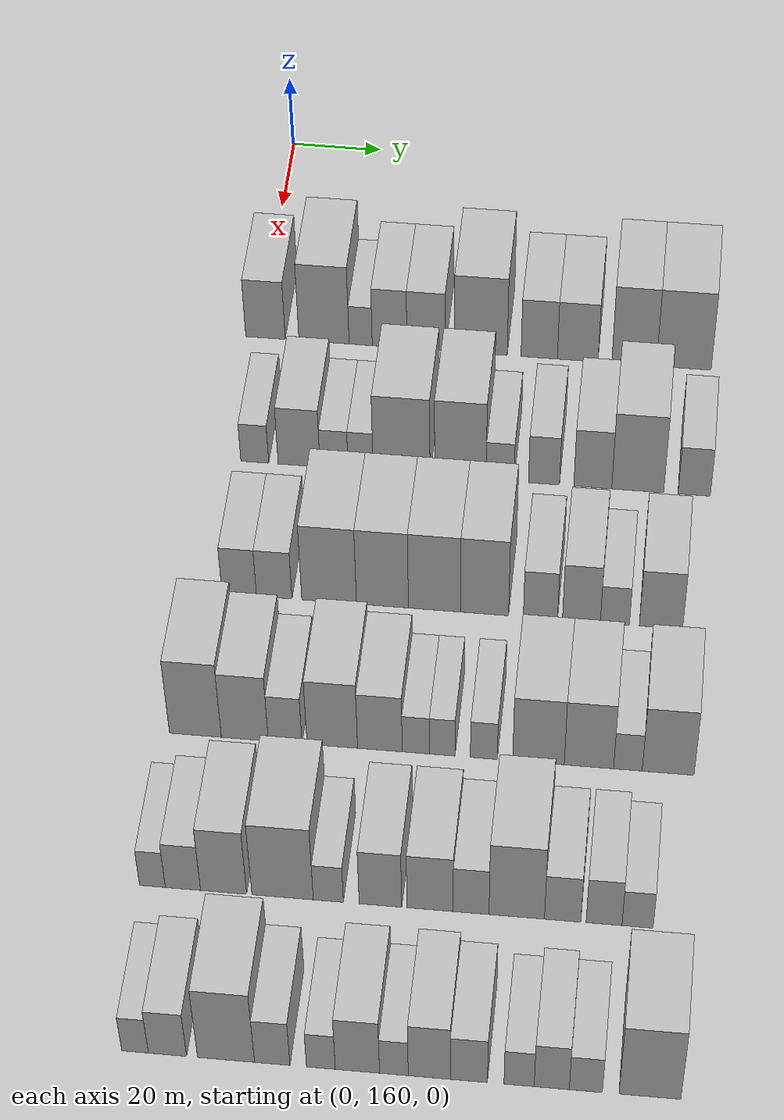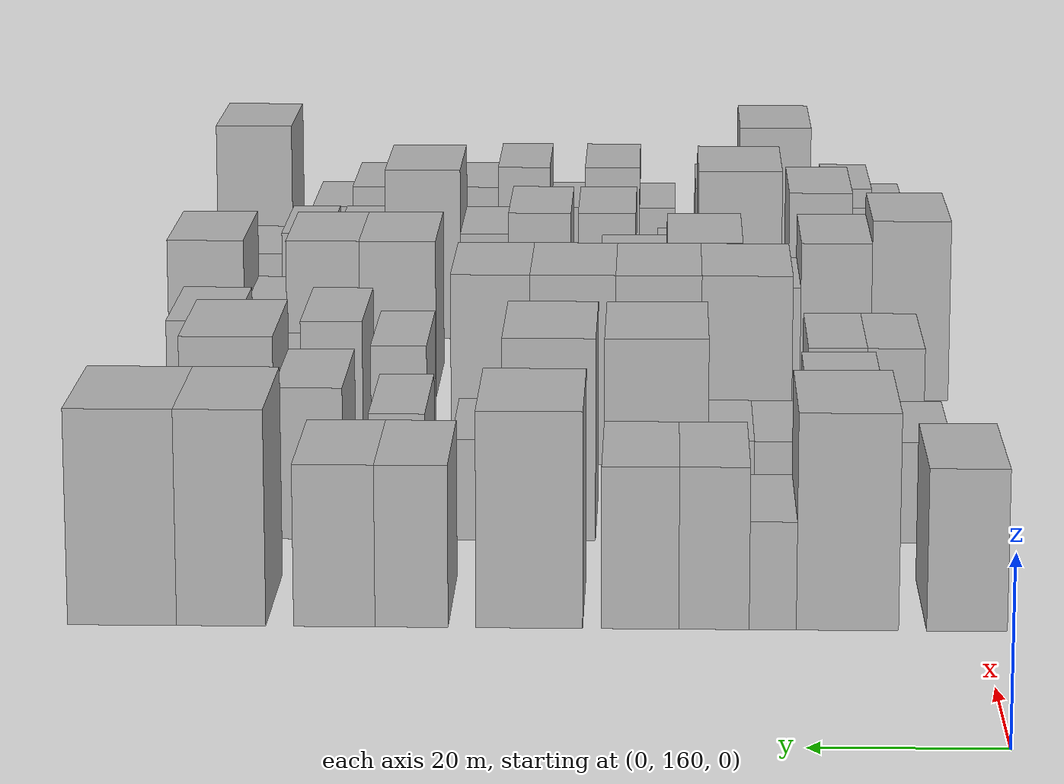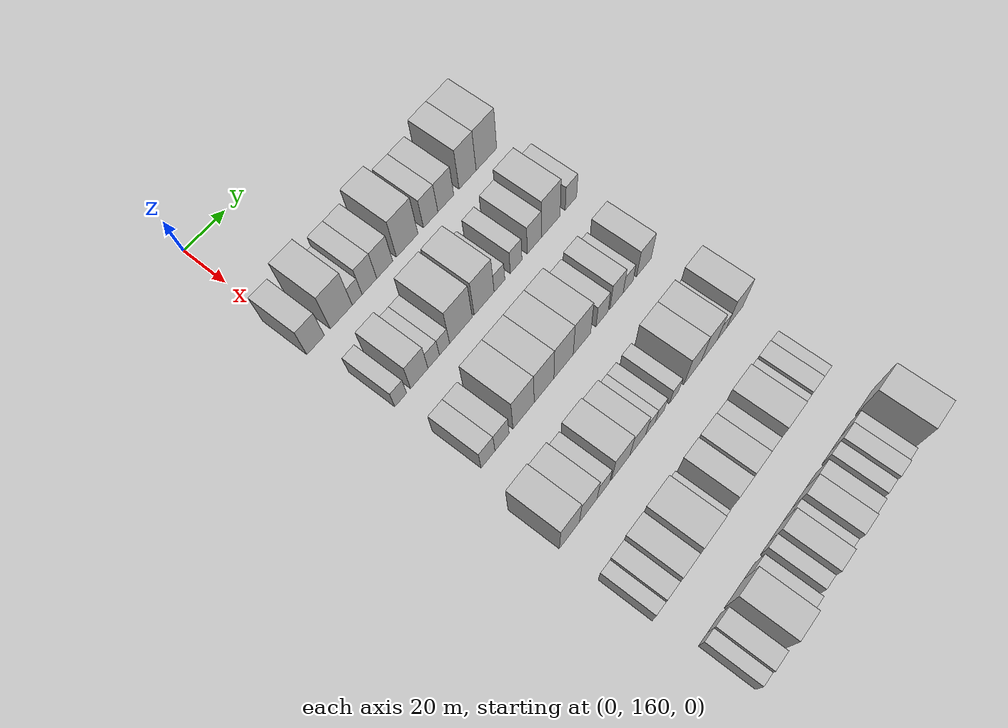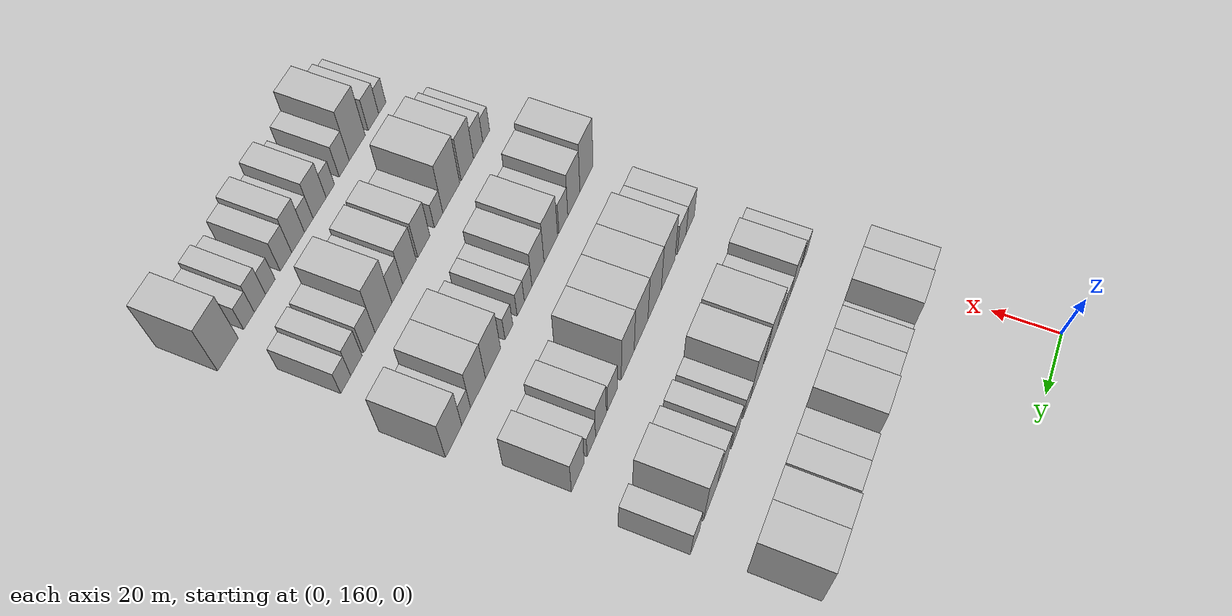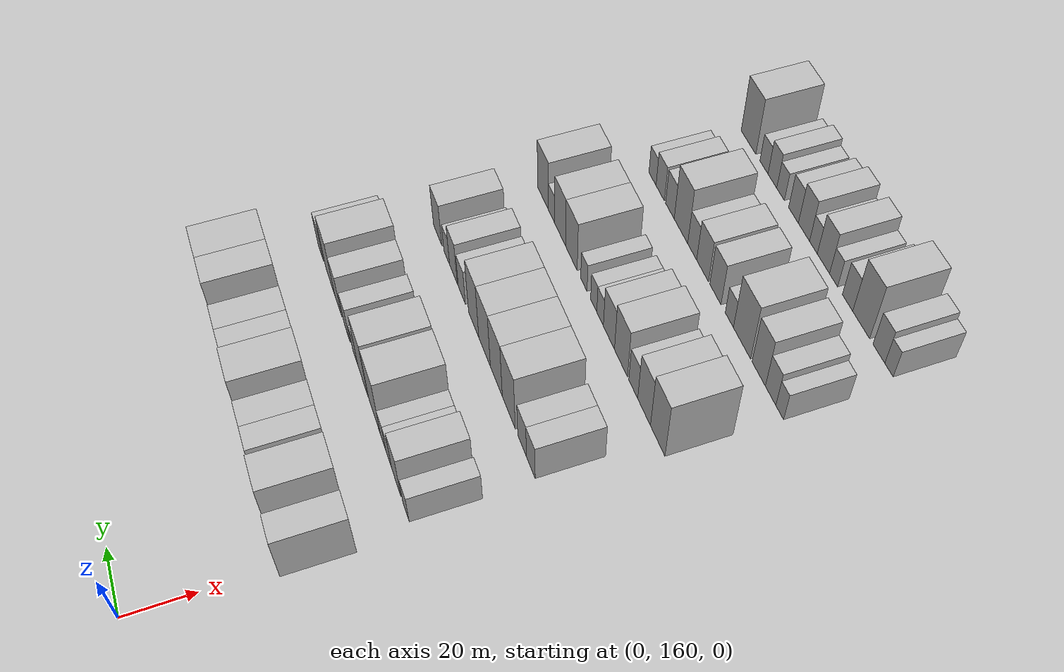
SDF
<sdf version="1.6">
 <world name="default">
  <model name="building_88">
   <static>1</static>
   <pose>50.0000 161.5408 0 0.000000 0.000000 0.000000</pose>
   <link name="link">
    <pose>0 0 9.00 0 0 0</pose>
    <collision name="collision"><geometry><box><size>20.0000 8.6439 18.0000</size></box></geometry></collision>
    <visual name="visual">
     <cast_shadows>0</cast_shadows>
     <geometry><box><size>20.0000 8.6439 18.0000</size></box></geometry>
     <material>
      <script>
       <uri>model://HANNAS_wall/materials/scripts</uri>
       <uri>model://HANNAS_wall/materials/textures</uri>
       <name>vrc/HANNAS_wall</name>
      </script>
     </material>
    </visual>
   </link>
  </model>
  <model name="building_89">
   <static>1</static>
   <pose>50.0000 174.3476 0 0.000000 0.000000 0.000000</pose>
   <link name="link">
    <pose>0 0 12.00 0 0 0</pose>
    <collision name="collision"><geometry><box><size>20.0000 10.9697 24.0000</size></box></geometry></collision>
    <visual name="visual">
     <cast_shadows>0</cast_shadows>
     <geometry><box><size>20.0000 10.9697 24.0000</size></box></geometry>
     <material>
      <script>
       <uri>model://HANNAS_wall/materials/scripts</uri>
       <uri>model://HANNAS_wall/materials/textures</uri>
       <name>vrc/HANNAS_wall</name>
      </script>
     </material>
    </visual>
   </link>
  </model>
  <model name="building_90">
   <static>1</static>
   <pose>50.0000 182.3591 0 0.000000 0.000000 0.000000</pose>
   <link name="link">
    <pose>0 0 6.00 0 0 0</pose>
    <collision name="collision"><geometry><box><size>20.0000 5.0533 12.0000</size></box></geometry></collision>
    <visual name="visual">
     <cast_shadows>0</cast_shadows>
     <geometry><box><size>20.0000 5.0533 12.0000</size></box></geometry>
     <material>
      <script>
       <uri>model://HANNAS_wall/materials/scripts</uri>
       <uri>model://HANNAS_wall/materials/textures</uri>
       <name>vrc/HANNAS_wall</name>
      </script>
     </material>
    </visual>
   </link>
  </model>
  <model name="building_91">
   <static>1</static>
   <pose>50.0000 188.6695 0 0.000000 0.000000 0.000000</pose>
   <link name="link">
    <pose>0 0 9.00 0 0 0</pose>
    <collision name="collision"><geometry><box><size>20.0000 7.5675 18.0000</size></box></geometry></collision>
    <visual name="visual">
     <cast_shadows>0</cast_shadows>
     <geometry><box><size>20.0000 7.5675 18.0000</size></box></geometry>
     <material>
      <script>
       <uri>model://HANNAS_wall/materials/scripts</uri>
       <uri>model://HANNAS_wall/materials/textures</uri>
       <name>vrc/HANNAS_wall</name>
      </script>
     </material>
    </visual>
   </link>
  </model>
  <model name="building_92">
   <static>1</static>
   <pose>50.0000 196.6122 0 0.000000 0.000000 0.000000</pose>
   <link name="link">
    <pose>0 0 9.00 0 0 0</pose>
    <collision name="collision"><geometry><box><size>20.0000 8.3180 18.0000</size></box></geometry></collision>
    <visual name="visual">
     <cast_shadows>0</cast_shadows>
     <geometry><box><size>20.0000 8.3180 18.0000</size></box></geometry>
     <material>
      <script>
       <uri>model://HANNAS_wall/materials/scripts</uri>
       <uri>model://HANNAS_wall/materials/textures</uri>
       <name>vrc/HANNAS_wall</name>
      </script>
     </material>
    </visual>
   </link>
  </model>
  <model name="building_93">
   <static>1</static>
   <pose>50.0000 208.5080 0 0.000000 0.000000 0.000000</pose>
   <link name="link">
    <pose>0 0 12.00 0 0 0</pose>
    <collision name="collision"><geometry><box><size>20.0000 11.4736 24.0000</size></box></geometry></collision>
    <visual name="visual">
     <cast_shadows>0</cast_shadows>
     <geometry><box><size>20.0000 11.4736 24.0000</size></box></geometry>
     <material>
      <script>
       <uri>model://HANNAS_wall/materials/scripts</uri>
       <uri>model://HANNAS_wall/materials/textures</uri>
       <name>vrc/HANNAS_wall</name>
      </script>
     </material>
    </visual>
   </link>
  </model>
  <model name="building_94">
   <static>1</static>
   <pose>50.0000 221.1806 0 0.000000 0.000000 0.000000</pose>
   <link name="link">
    <pose>0 0 9.00 0 0 0</pose>
    <collision name="collision"><geometry><box><size>20.0000 7.8715 18.0000</size></box></geometry></collision>
    <visual name="visual">
     <cast_shadows>0</cast_shadows>
     <geometry><box><size>20.0000 7.8715 18.0000</size></box></geometry>
     <material>
      <script>
       <uri>model://HANNAS_wall/materials/scripts</uri>
       <uri>model://HANNAS_wall/materials/textures</uri>
       <name>vrc/HANNAS_wall</name>
      </script>
     </material>
    </visual>
   </link>
  </model>
  <model name="building_95">
   <static>1</static>
   <pose>50.0000 229.5053 0 0.000000 0.000000 0.000000</pose>
   <link name="link">
    <pose>0 0 9.00 0 0 0</pose>
    <collision name="collision"><geometry><box><size>20.0000 8.7780 18.0000</size></box></geometry></collision>
    <visual name="visual">
     <cast_shadows>0</cast_shadows>
     <geometry><box><size>20.0000 8.7780 18.0000</size></box></geometry>
     <material>
      <script>
       <uri>model://HANNAS_wall/materials/scripts</uri>
       <uri>model://HANNAS_wall/materials/textures</uri>
       <name>vrc/HANNAS_wall</name>
      </script>
     </material>
    </visual>
   </link>
  </model>
  <model name="building_96">
   <static>1</static>
   <pose>50.0000 241.7116 0 0.000000 0.000000 0.000000</pose>
   <link name="link">
    <pose>0 0 12.00 0 0 0</pose>
    <collision name="collision"><geometry><box><size>20.0000 9.6346 24.0000</size></box></geometry></collision>
    <visual name="visual">
     <cast_shadows>0</cast_shadows>
     <geometry><box><size>20.0000 9.6346 24.0000</size></box></geometry>
     <material>
      <script>
       <uri>model://HANNAS_wall/materials/scripts</uri>
       <uri>model://HANNAS_wall/materials/textures</uri>
       <name>vrc/HANNAS_wall</name>
      </script>
     </material>
    </visual>
   </link>
  </model>
  <model name="building_97">
   <static>1</static>
   <pose>50.0000 252.4212 0 0.000000 0.000000 0.000000</pose>
   <link name="link">
    <pose>0 0 12.00 0 0 0</pose>
    <collision name="collision"><geometry><box><size>20.0000 11.7846 24.0000</size></box></geometry></collision>
    <visual name="visual">
     <cast_shadows>0</cast_shadows>
     <geometry><box><size>20.0000 11.7846 24.0000</size></box></geometry>
     <material>
      <script>
       <uri>model://HANNAS_wall/materials/scripts</uri>
       <uri>model://HANNAS_wall/materials/textures</uri>
       <name>vrc/HANNAS_wall</name>
      </script>
     </material>
    </visual>
   </link>
  </model>
  <model name="building_217">
   <static>1</static>
   <pose>85.0000 163.9812 0 0.000000 0.000000 0.000000</pose>
   <link name="link">
    <pose>0 0 6.00 0 0 0</pose>
    <collision name="collision"><geometry><box><size>20.0000 5.8982 12.0000</size></box></geometry></collision>
    <visual name="visual">
     <cast_shadows>0</cast_shadows>
     <geometry><box><size>20.0000 5.8982 12.0000</size></box></geometry>
     <material>
      <script>
       <uri>model://HANNAS_wall/materials/scripts</uri>
       <uri>model://HANNAS_wall/materials/textures</uri>
       <name>vrc/HANNAS_wall</name>
      </script>
     </material>
    </visual>
   </link>
  </model>
  <model name="building_218">
   <static>1</static>
   <pose>85.0000 173.3570 0 0.000000 0.000000 0.000000</pose>
   <link name="link">
    <pose>0 0 9.00 0 0 0</pose>
    <collision name="collision"><geometry><box><size>20.0000 8.8533 18.0000</size></box></geometry></collision>
    <visual name="visual">
     <cast_shadows>0</cast_shadows>
     <geometry><box><size>20.0000 8.8533 18.0000</size></box></geometry>
     <material>
      <script>
       <uri>model://HANNAS_wall/materials/scripts</uri>
       <uri>model://HANNAS_wall/materials/textures</uri>
       <name>vrc/HANNAS_wall</name>
      </script>
     </material>
    </visual>
   </link>
  </model>
  <model name="building_219">
   <static>1</static>
   <pose>85.0000 180.7452 0 0.000000 0.000000 0.000000</pose>
   <link name="link">
    <pose>0 0 6.00 0 0 0</pose>
    <collision name="collision"><geometry><box><size>20.0000 5.9231 12.0000</size></box></geometry></collision>
    <visual name="visual">
     <cast_shadows>0</cast_shadows>
     <geometry><box><size>20.0000 5.9231 12.0000</size></box></geometry>
     <material>
      <script>
       <uri>model://HANNAS_wall/materials/scripts</uri>
       <uri>model://HANNAS_wall/materials/textures</uri>
       <name>vrc/HANNAS_wall</name>
      </script>
     </material>
    </visual>
   </link>
  </model>
  <model name="building_220">
   <static>1</static>
   <pose>85.0000 186.3624 0 0.000000 0.000000 0.000000</pose>
   <link name="link">
    <pose>0 0 6.00 0 0 0</pose>
    <collision name="collision"><geometry><box><size>20.0000 5.3111 12.0000</size></box></geometry></collision>
    <visual name="visual">
     <cast_shadows>0</cast_shadows>
     <geometry><box><size>20.0000 5.3111 12.0000</size></box></geometry>
     <material>
      <script>
       <uri>model://HANNAS_wall/materials/scripts</uri>
       <uri>model://HANNAS_wall/materials/textures</uri>
       <name>vrc/HANNAS_wall</name>
      </script>
     </material>
    </visual>
   </link>
  </model>
  <model name="building_221">
   <static>1</static>
   <pose>85.0000 194.9971 0 0.000000 0.000000 0.000000</pose>
   <link name="link">
    <pose>0 0 12.00 0 0 0</pose>
    <collision name="collision"><geometry><box><size>20.0000 11.9584 24.0000</size></box></geometry></collision>
    <visual name="visual">
     <cast_shadows>0</cast_shadows>
     <geometry><box><size>20.0000 11.9584 24.0000</size></box></geometry>
     <material>
      <script>
       <uri>model://HANNAS_wall/materials/scripts</uri>
       <uri>model://HANNAS_wall/materials/textures</uri>
       <name>vrc/HANNAS_wall</name>
      </script>
     </material>
    </visual>
   </link>
  </model>
  <model name="building_222">
   <static>1</static>
   <pose>85.0000 207.3681 0 0.000000 0.000000 0.000000</pose>
   <link name="link">
    <pose>0 0 12.00 0 0 0</pose>
    <collision name="collision"><geometry><box><size>20.0000 10.7835 24.0000</size></box></geometry></collision>
    <visual name="visual">
     <cast_shadows>0</cast_shadows>
     <geometry><box><size>20.0000 10.7835 24.0000</size></box></geometry>
     <material>
      <script>
       <uri>model://HANNAS_wall/materials/scripts</uri>
       <uri>model://HANNAS_wall/materials/textures</uri>
       <name>vrc/HANNAS_wall</name>
      </script>
     </material>
    </visual>
   </link>
  </model>
  <model name="building_223">
   <static>1</static>
   <pose>85.0000 215.7024 0 0.000000 0.000000 0.000000</pose>
   <link name="link">
    <pose>0 0 6.00 0 0 0</pose>
    <collision name="collision"><geometry><box><size>20.0000 5.8851 12.0000</size></box></geometry></collision>
    <visual name="visual">
     <cast_shadows>0</cast_shadows>
     <geometry><box><size>20.0000 5.8851 12.0000</size></box></geometry>
     <material>
      <script>
       <uri>model://HANNAS_wall/materials/scripts</uri>
       <uri>model://HANNAS_wall/materials/textures</uri>
       <name>vrc/HANNAS_wall</name>
      </script>
     </material>
    </visual>
   </link>
  </model>
  <model name="building_224">
   <static>1</static>
   <pose>85.0000 224.8916 0 0.000000 0.000000 0.000000</pose>
   <link name="link">
    <pose>0 0 7.50 0 0 0</pose>
    <collision name="collision"><geometry><box><size>20.0000 6.4934 15.0000</size></box></geometry></collision>
    <visual name="visual">
     <cast_shadows>0</cast_shadows>
     <geometry><box><size>20.0000 6.4934 15.0000</size></box></geometry>
     <material>
      <script>
       <uri>model://HANNAS_wall/materials/scripts</uri>
       <uri>model://HANNAS_wall/materials/textures</uri>
       <name>vrc/HANNAS_wall</name>
      </script>
     </material>
    </visual>
   </link>
  </model>
  <model name="building_225">
   <static>1</static>
   <pose>85.0000 235.0985 0 0.000000 0.000000 0.000000</pose>
   <link name="link">
    <pose>0 0 9.00 0 0 0</pose>
    <collision name="collision"><geometry><box><size>20.0000 7.9205 18.0000</size></box></geometry></collision>
    <visual name="visual">
     <cast_shadows>0</cast_shadows>
     <geometry><box><size>20.0000 7.9205 18.0000</size></box></geometry>
     <material>
      <script>
       <uri>model://HANNAS_wall/materials/scripts</uri>
       <uri>model://HANNAS_wall/materials/textures</uri>
       <name>vrc/HANNAS_wall</name>
      </script>
     </material>
    </visual>
   </link>
  </model>
  <model name="building_226">
   <static>1</static>
   <pose>85.0000 244.4777 0 0.000000 0.000000 0.000000</pose>
   <link name="link">
    <pose>0 0 12.00 0 0 0</pose>
    <collision name="collision"><geometry><box><size>20.0000 10.8379 24.0000</size></box></geometry></collision>
    <visual name="visual">
     <cast_shadows>0</cast_shadows>
     <geometry><box><size>20.0000 10.8379 24.0000</size></box></geometry>
     <material>
      <script>
       <uri>model://HANNAS_wall/materials/scripts</uri>
       <uri>model://HANNAS_wall/materials/textures</uri>
       <name>vrc/HANNAS_wall</name>
      </script>
     </material>
    </visual>
   </link>
  </model>
  <model name="building_227">
   <static>1</static>
   <pose>85.0000 256.2527 0 0.000000 0.000000 0.000000</pose>
   <link name="link">
    <pose>0 0 7.50 0 0 0</pose>
    <collision name="collision"><geometry><box><size>20.0000 6.7119 15.0000</size></box></geometry></collision>
    <visual name="visual">
     <cast_shadows>0</cast_shadows>
     <geometry><box><size>20.0000 6.7119 15.0000</size></box></geometry>
     <material>
      <script>
       <uri>model://HANNAS_wall/materials/scripts</uri>
       <uri>model://HANNAS_wall/materials/textures</uri>
       <name>vrc/HANNAS_wall</name>
      </script>
     </material>
    </visual>
   </link>
  </model>
  <model name="building_328">
   <static>1</static>
   <pose>120.0000 165.5937 0 0.000000 0.000000 0.000000</pose>
   <link name="link">
    <pose>0 0 7.50 0 0 0</pose>
    <collision name="collision"><geometry><box><size>20.0000 7.0511 15.0000</size></box></geometry></collision>
    <visual name="visual">
     <cast_shadows>0</cast_shadows>
     <geometry><box><size>20.0000 7.0511 15.0000</size></box></geometry>
     <material>
      <script>
       <uri>model://HANNAS_wall/materials/scripts</uri>
       <uri>model://HANNAS_wall/materials/textures</uri>
       <name>vrc/HANNAS_wall</name>
      </script>
     </material>
    </visual>
   </link>
  </model>
  <model name="building_329">
   <static>1</static>
   <pose>120.0000 172.7492 0 0.000000 0.000000 0.000000</pose>
   <link name="link">
    <pose>0 0 7.50 0 0 0</pose>
    <collision name="collision"><geometry><box><size>20.0000 7.2598 15.0000</size></box></geometry></collision>
    <visual name="visual">
     <cast_shadows>0</cast_shadows>
     <geometry><box><size>20.0000 7.2598 15.0000</size></box></geometry>
     <material>
      <script>
       <uri>model://HANNAS_wall/materials/scripts</uri>
       <uri>model://HANNAS_wall/materials/textures</uri>
       <name>vrc/HANNAS_wall</name>
      </script>
     </material>
    </visual>
   </link>
  </model>
  <model name="building_330">
   <static>1</static>
   <pose>120.0000 183.9544 0 0.000000 0.000000 0.000000</pose>
   <link name="link">
    <pose>0 0 12.00 0 0 0</pose>
    <collision name="collision"><geometry><box><size>20.0000 11.1507 24.0000</size></box></geometry></collision>
    <visual name="visual">
     <cast_shadows>0</cast_shadows>
     <geometry><box><size>20.0000 11.1507 24.0000</size></box></geometry>
     <material>
      <script>
       <uri>model://HANNAS_wall/materials/scripts</uri>
       <uri>model://HANNAS_wall/materials/textures</uri>
       <name>vrc/HANNAS_wall</name>
      </script>
     </material>
    </visual>
   </link>
  </model>
  <model name="building_331">
   <static>1</static>
   <pose>120.0000 194.8157 0 0.000000 0.000000 0.000000</pose>
   <link name="link">
    <pose>0 0 12.00 0 0 0</pose>
    <collision name="collision"><geometry><box><size>20.0000 10.5718 24.0000</size></box></geometry></collision>
    <visual name="visual">
     <cast_shadows>0</cast_shadows>
     <geometry><box><size>20.0000 10.5718 24.0000</size></box></geometry>
     <material>
      <script>
       <uri>model://HANNAS_wall/materials/scripts</uri>
       <uri>model://HANNAS_wall/materials/textures</uri>
       <name>vrc/HANNAS_wall</name>
      </script>
     </material>
    </visual>
   </link>
  </model>
  <model name="building_332">
   <static>1</static>
   <pose>120.0000 205.3823 0 0.000000 0.000000 0.000000</pose>
   <link name="link">
    <pose>0 0 12.00 0 0 0</pose>
    <collision name="collision"><geometry><box><size>20.0000 10.5615 24.0000</size></box></geometry></collision>
    <visual name="visual">
     <cast_shadows>0</cast_shadows>
     <geometry><box><size>20.0000 10.5615 24.0000</size></box></geometry>
     <material>
      <script>
       <uri>model://HANNAS_wall/materials/scripts</uri>
       <uri>model://HANNAS_wall/materials/textures</uri>
       <name>vrc/HANNAS_wall</name>
      </script>
     </material>
    </visual>
   </link>
  </model>
  <model name="building_333">
   <static>1</static>
   <pose>120.0000 215.5341 0 0.000000 0.000000 0.000000</pose>
   <link name="link">
    <pose>0 0 12.00 0 0 0</pose>
    <collision name="collision"><geometry><box><size>20.0000 9.7420 24.0000</size></box></geometry></collision>
    <visual name="visual">
     <cast_shadows>0</cast_shadows>
     <geometry><box><size>20.0000 9.7420 24.0000</size></box></geometry>
     <material>
      <script>
       <uri>model://HANNAS_wall/materials/scripts</uri>
       <uri>model://HANNAS_wall/materials/textures</uri>
       <name>vrc/HANNAS_wall</name>
      </script>
     </material>
    </visual>
   </link>
  </model>
  <model name="building_334">
   <static>1</static>
   <pose>120.0000 226.8589 0 0.000000 0.000000 0.000000</pose>
   <link name="link">
    <pose>0 0 7.50 0 0 0</pose>
    <collision name="collision"><geometry><box><size>20.0000 6.9076 15.0000</size></box></geometry></collision>
    <visual name="visual">
     <cast_shadows>0</cast_shadows>
     <geometry><box><size>20.0000 6.9076 15.0000</size></box></geometry>
     <material>
      <script>
       <uri>model://HANNAS_wall/materials/scripts</uri>
       <uri>model://HANNAS_wall/materials/textures</uri>
       <name>vrc/HANNAS_wall</name>
      </script>
     </material>
    </visual>
   </link>
  </model>
  <model name="building_335">
   <static>1</static>
   <pose>120.0000 235.1327 0 0.000000 0.000000 0.000000</pose>
   <link name="link">
    <pose>0 0 9.00 0 0 0</pose>
    <collision name="collision"><geometry><box><size>20.0000 7.6400 18.0000</size></box></geometry></collision>
    <visual name="visual">
     <cast_shadows>0</cast_shadows>
     <geometry><box><size>20.0000 7.6400 18.0000</size></box></geometry>
     <material>
      <script>
       <uri>model://HANNAS_wall/materials/scripts</uri>
       <uri>model://HANNAS_wall/materials/textures</uri>
       <name>vrc/HANNAS_wall</name>
      </script>
     </material>
    </visual>
   </link>
  </model>
  <model name="building_336">
   <static>1</static>
   <pose>120.0000 241.8894 0 0.000000 0.000000 0.000000</pose>
   <link name="link">
    <pose>0 0 6.00 0 0 0</pose>
    <collision name="collision"><geometry><box><size>20.0000 5.8735 12.0000</size></box></geometry></collision>
    <visual name="visual">
     <cast_shadows>0</cast_shadows>
     <geometry><box><size>20.0000 5.8735 12.0000</size></box></geometry>
     <material>
      <script>
       <uri>model://HANNAS_wall/materials/scripts</uri>
       <uri>model://HANNAS_wall/materials/textures</uri>
       <name>vrc/HANNAS_wall</name>
      </script>
     </material>
    </visual>
   </link>
  </model>
  <model name="building_337">
   <static>1</static>
   <pose>120.0000 251.1779 0 0.000000 0.000000 0.000000</pose>
   <link name="link">
    <pose>0 0 9.00 0 0 0</pose>
    <collision name="collision"><geometry><box><size>20.0000 8.7034 18.0000</size></box></geometry></collision>
    <visual name="visual">
     <cast_shadows>0</cast_shadows>
     <geometry><box><size>20.0000 8.7034 18.0000</size></box></geometry>
     <material>
      <script>
       <uri>model://HANNAS_wall/materials/scripts</uri>
       <uri>model://HANNAS_wall/materials/textures</uri>
       <name>vrc/HANNAS_wall</name>
      </script>
     </material>
    </visual>
   </link>
  </model>
  <model name="building_451">
   <static>1</static>
   <pose>155.0000 161.8348 0 0.000000 0.000000 0.000000</pose>
   <link name="link">
    <pose>0 0 12.00 0 0 0</pose>
    <collision name="collision"><geometry><box><size>20.0000 10.2324 24.0000</size></box></geometry></collision>
    <visual name="visual">
     <cast_shadows>0</cast_shadows>
     <geometry><box><size>20.0000 10.2324 24.0000</size></box></geometry>
     <material>
      <script>
       <uri>model://HANNAS_wall/materials/scripts</uri>
       <uri>model://HANNAS_wall/materials/textures</uri>
       <name>vrc/HANNAS_wall</name>
      </script>
     </material>
    </visual>
   </link>
  </model>
  <model name="building_452">
   <static>1</static>
   <pose>155.0000 171.5874 0 0.000000 0.000000 0.000000</pose>
   <link name="link">
    <pose>0 0 10.50 0 0 0</pose>
    <collision name="collision"><geometry><box><size>20.0000 9.2727 21.0000</size></box></geometry></collision>
    <visual name="visual">
     <cast_shadows>0</cast_shadows>
     <geometry><box><size>20.0000 9.2727 21.0000</size></box></geometry>
     <material>
      <script>
       <uri>model://HANNAS_wall/materials/scripts</uri>
       <uri>model://HANNAS_wall/materials/textures</uri>
       <name>vrc/HANNAS_wall</name>
      </script>
     </material>
    </visual>
   </link>
  </model>
  <model name="building_453">
   <static>1</static>
   <pose>155.0000 179.5387 0 0.000000 0.000000 0.000000</pose>
   <link name="link">
    <pose>0 0 7.50 0 0 0</pose>
    <collision name="collision"><geometry><box><size>20.0000 6.6299 15.0000</size></box></geometry></collision>
    <visual name="visual">
     <cast_shadows>0</cast_shadows>
     <geometry><box><size>20.0000 6.6299 15.0000</size></box></geometry>
     <material>
      <script>
       <uri>model://HANNAS_wall/materials/scripts</uri>
       <uri>model://HANNAS_wall/materials/textures</uri>
       <name>vrc/HANNAS_wall</name>
      </script>
     </material>
    </visual>
   </link>
  </model>
  <model name="building_454">
   <static>1</static>
   <pose>155.0000 188.8232 0 0.000000 0.000000 0.000000</pose>
   <link name="link">
    <pose>0 0 10.50 0 0 0</pose>
    <collision name="collision"><geometry><box><size>20.0000 9.9390 21.0000</size></box></geometry></collision>
    <visual name="visual">
     <cast_shadows>0</cast_shadows>
     <geometry><box><size>20.0000 9.9390 21.0000</size></box></geometry>
     <material>
      <script>
       <uri>model://HANNAS_wall/materials/scripts</uri>
       <uri>model://HANNAS_wall/materials/textures</uri>
       <name>vrc/HANNAS_wall</name>
      </script>
     </material>
    </visual>
   </link>
  </model>
  <model name="building_455">
   <static>1</static>
   <pose>155.0000 198.1729 0 0.000000 0.000000 0.000000</pose>
   <link name="link">
    <pose>0 0 9.00 0 0 0</pose>
    <collision name="collision"><geometry><box><size>20.0000 8.7604 18.0000</size></box></geometry></collision>
    <visual name="visual">
     <cast_shadows>0</cast_shadows>
     <geometry><box><size>20.0000 8.7604 18.0000</size></box></geometry>
     <material>
      <script>
       <uri>model://HANNAS_wall/materials/scripts</uri>
       <uri>model://HANNAS_wall/materials/textures</uri>
       <name>vrc/HANNAS_wall</name>
      </script>
     </material>
    </visual>
   </link>
  </model>
  <model name="building_456">
   <static>1</static>
   <pose>155.0000 205.2083 0 0.000000 0.000000 0.000000</pose>
   <link name="link">
    <pose>0 0 6.00 0 0 0</pose>
    <collision name="collision"><geometry><box><size>20.0000 5.3103 12.0000</size></box></geometry></collision>
    <visual name="visual">
     <cast_shadows>0</cast_shadows>
     <geometry><box><size>20.0000 5.3103 12.0000</size></box></geometry>
     <material>
      <script>
       <uri>model://HANNAS_wall/materials/scripts</uri>
       <uri>model://HANNAS_wall/materials/textures</uri>
       <name>vrc/HANNAS_wall</name>
      </script>
     </material>
    </visual>
   </link>
  </model>
  <model name="building_457">
   <static>1</static>
   <pose>155.0000 210.3767 0 0.000000 0.000000 0.000000</pose>
   <link name="link">
    <pose>0 0 6.00 0 0 0</pose>
    <collision name="collision"><geometry><box><size>20.0000 5.0266 12.0000</size></box></geometry></collision>
    <visual name="visual">
     <cast_shadows>0</cast_shadows>
     <geometry><box><size>20.0000 5.0266 12.0000</size></box></geometry>
     <material>
      <script>
       <uri>model://HANNAS_wall/materials/scripts</uri>
       <uri>model://HANNAS_wall/materials/textures</uri>
       <name>vrc/HANNAS_wall</name>
      </script>
     </material>
    </visual>
   </link>
  </model>
  <model name="building_458">
   <static>1</static>
   <pose>155.0000 218.5241 0 0.000000 0.000000 0.000000</pose>
   <link name="link">
    <pose>0 0 6.00 0 0 0</pose>
    <collision name="collision"><geometry><box><size>20.0000 5.2682 12.0000</size></box></geometry></collision>
    <visual name="visual">
     <cast_shadows>0</cast_shadows>
     <geometry><box><size>20.0000 5.2682 12.0000</size></box></geometry>
     <material>
      <script>
       <uri>model://HANNAS_wall/materials/scripts</uri>
       <uri>model://HANNAS_wall/materials/textures</uri>
       <name>vrc/HANNAS_wall</name>
      </script>
     </material>
    </visual>
   </link>
  </model>
  <model name="building_459">
   <static>1</static>
   <pose>155.0000 229.1808 0 0.000000 0.000000 0.000000</pose>
   <link name="link">
    <pose>0 0 10.50 0 0 0</pose>
    <collision name="collision"><geometry><box><size>20.0000 10.0453 21.0000</size></box></geometry></collision>
    <visual name="visual">
     <cast_shadows>0</cast_shadows>
     <geometry><box><size>20.0000 10.0453 21.0000</size></box></geometry>
     <material>
      <script>
       <uri>model://HANNAS_wall/materials/scripts</uri>
       <uri>model://HANNAS_wall/materials/textures</uri>
       <name>vrc/HANNAS_wall</name>
      </script>
     </material>
    </visual>
   </link>
  </model>
  <model name="building_460">
   <static>1</static>
   <pose>155.0000 239.0058 0 0.000000 0.000000 0.000000</pose>
   <link name="link">
    <pose>0 0 10.50 0 0 0</pose>
    <collision name="collision"><geometry><box><size>20.0000 9.6047 21.0000</size></box></geometry></collision>
    <visual name="visual">
     <cast_shadows>0</cast_shadows>
     <geometry><box><size>20.0000 9.6047 21.0000</size></box></geometry>
     <material>
      <script>
       <uri>model://HANNAS_wall/materials/scripts</uri>
       <uri>model://HANNAS_wall/materials/textures</uri>
       <name>vrc/HANNAS_wall</name>
      </script>
     </material>
    </visual>
   </link>
  </model>
  <model name="building_461">
   <static>1</static>
   <pose>155.0000 246.5909 0 0.000000 0.000000 0.000000</pose>
   <link name="link">
    <pose>0 0 6.00 0 0 0</pose>
    <collision name="collision"><geometry><box><size>20.0000 5.5655 12.0000</size></box></geometry></collision>
    <visual name="visual">
     <cast_shadows>0</cast_shadows>
     <geometry><box><size>20.0000 5.5655 12.0000</size></box></geometry>
     <material>
      <script>
       <uri>model://HANNAS_wall/materials/scripts</uri>
       <uri>model://HANNAS_wall/materials/textures</uri>
       <name>vrc/HANNAS_wall</name>
      </script>
     </material>
    </visual>
   </link>
  </model>
  <model name="building_462">
   <static>1</static>
   <pose>155.0000 254.4003 0 0.000000 0.000000 0.000000</pose>
   <link name="link">
    <pose>0 0 10.50 0 0 0</pose>
    <collision name="collision"><geometry><box><size>20.0000 10.0533 21.0000</size></box></geometry></collision>
    <visual name="visual">
     <cast_shadows>0</cast_shadows>
     <geometry><box><size>20.0000 10.0533 21.0000</size></box></geometry>
     <material>
      <script>
       <uri>model://HANNAS_wall/materials/scripts</uri>
       <uri>model://HANNAS_wall/materials/textures</uri>
       <name>vrc/HANNAS_wall</name>
      </script>
     </material>
    </visual>
   </link>
  </model>
  <model name="building_566">
   <static>1</static>
   <pose>190.0000 158.8619 0 0.000000 0.000000 0.000000</pose>
   <link name="link">
    <pose>0 0 6.00 0 0 0</pose>
    <collision name="collision"><geometry><box><size>20.0000 4.9118 12.0000</size></box></geometry></collision>
    <visual name="visual">
     <cast_shadows>0</cast_shadows>
     <geometry><box><size>20.0000 4.9118 12.0000</size></box></geometry>
     <material>
      <script>
       <uri>model://HANNAS_wall/materials/scripts</uri>
       <uri>model://HANNAS_wall/materials/textures</uri>
       <name>vrc/HANNAS_wall</name>
      </script>
     </material>
    </visual>
   </link>
  </model>
  <model name="building_567">
   <static>1</static>
   <pose>190.0000 164.6735 0 0.000000 0.000000 0.000000</pose>
   <link name="link">
    <pose>0 0 7.50 0 0 0</pose>
    <collision name="collision"><geometry><box><size>20.0000 6.7114 15.0000</size></box></geometry></collision>
    <visual name="visual">
     <cast_shadows>0</cast_shadows>
     <geometry><box><size>20.0000 6.7114 15.0000</size></box></geometry>
     <material>
      <script>
       <uri>model://HANNAS_wall/materials/scripts</uri>
       <uri>model://HANNAS_wall/materials/textures</uri>
       <name>vrc/HANNAS_wall</name>
      </script>
     </material>
    </visual>
   </link>
  </model>
  <model name="building_568">
   <static>1</static>
   <pose>190.0000 172.4108 0 0.000000 0.000000 0.000000</pose>
   <link name="link">
    <pose>0 0 10.50 0 0 0</pose>
    <collision name="collision"><geometry><box><size>20.0000 8.7631 21.0000</size></box></geometry></collision>
    <visual name="visual">
     <cast_shadows>0</cast_shadows>
     <geometry><box><size>20.0000 8.7631 21.0000</size></box></geometry>
     <material>
      <script>
       <uri>model://HANNAS_wall/materials/scripts</uri>
       <uri>model://HANNAS_wall/materials/textures</uri>
       <name>vrc/HANNAS_wall</name>
      </script>
     </material>
    </visual>
   </link>
  </model>
  <model name="building_569">
   <static>1</static>
   <pose>190.0000 183.6151 0 0.000000 0.000000 0.000000</pose>
   <link name="link">
    <pose>0 0 12.00 0 0 0</pose>
    <collision name="collision"><geometry><box><size>20.0000 11.6455 24.0000</size></box></geometry></collision>
    <visual name="visual">
     <cast_shadows>0</cast_shadows>
     <geometry><box><size>20.0000 11.6455 24.0000</size></box></geometry>
     <material>
      <script>
       <uri>model://HANNAS_wall/materials/scripts</uri>
       <uri>model://HANNAS_wall/materials/textures</uri>
       <name>vrc/HANNAS_wall</name>
      </script>
     </material>
    </visual>
   </link>
  </model>
  <model name="building_570">
   <static>1</static>
   <pose>190.0000 192.2838 0 0.000000 0.000000 0.000000</pose>
   <link name="link">
    <pose>0 0 6.00 0 0 0</pose>
    <collision name="collision"><geometry><box><size>20.0000 5.6918 12.0000</size></box></geometry></collision>
    <visual name="visual">
     <cast_shadows>0</cast_shadows>
     <geometry><box><size>20.0000 5.6918 12.0000</size></box></geometry>
     <material>
      <script>
       <uri>model://HANNAS_wall/materials/scripts</uri>
       <uri>model://HANNAS_wall/materials/textures</uri>
       <name>vrc/HANNAS_wall</name>
      </script>
     </material>
    </visual>
   </link>
  </model>
  <model name="building_571">
   <static>1</static>
   <pose>190.0000 202.1464 0 0.000000 0.000000 0.000000</pose>
   <link name="link">
    <pose>0 0 9.00 0 0 0</pose>
    <collision name="collision"><geometry><box><size>20.0000 8.0335 18.0000</size></box></geometry></collision>
    <visual name="visual">
     <cast_shadows>0</cast_shadows>
     <geometry><box><size>20.0000 8.0335 18.0000</size></box></geometry>
     <material>
      <script>
       <uri>model://HANNAS_wall/materials/scripts</uri>
       <uri>model://HANNAS_wall/materials/textures</uri>
       <name>vrc/HANNAS_wall</name>
      </script>
     </material>
    </visual>
   </link>
  </model>
  <model name="building_572">
   <static>1</static>
   <pose>190.0000 211.5142 0 0.000000 0.000000 0.000000</pose>
   <link name="link">
    <pose>0 0 9.00 0 0 0</pose>
    <collision name="collision"><geometry><box><size>20.0000 8.7021 18.0000</size></box></geometry></collision>
    <visual name="visual">
     <cast_shadows>0</cast_shadows>
     <geometry><box><size>20.0000 8.7021 18.0000</size></box></geometry>
     <material>
      <script>
       <uri>model://HANNAS_wall/materials/scripts</uri>
       <uri>model://HANNAS_wall/materials/textures</uri>
       <name>vrc/HANNAS_wall</name>
      </script>
     </material>
    </visual>
   </link>
  </model>
  <model name="building_573">
   <static>1</static>
   <pose>190.0000 219.2315 0 0.000000 0.000000 0.000000</pose>
   <link name="link">
    <pose>0 0 7.50 0 0 0</pose>
    <collision name="collision"><geometry><box><size>20.0000 6.7325 15.0000</size></box></geometry></collision>
    <visual name="visual">
     <cast_shadows>0</cast_shadows>
     <geometry><box><size>20.0000 6.7325 15.0000</size></box></geometry>
     <material>
      <script>
       <uri>model://HANNAS_wall/materials/scripts</uri>
       <uri>model://HANNAS_wall/materials/textures</uri>
       <name>vrc/HANNAS_wall</name>
      </script>
     </material>
    </visual>
   </link>
  </model>
  <model name="building_574">
   <static>1</static>
   <pose>190.0000 227.8180 0 0.000000 0.000000 0.000000</pose>
   <link name="link">
    <pose>0 0 12.00 0 0 0</pose>
    <collision name="collision"><geometry><box><size>20.0000 10.4406 24.0000</size></box></geometry></collision>
    <visual name="visual">
     <cast_shadows>0</cast_shadows>
     <geometry><box><size>20.0000 10.4406 24.0000</size></box></geometry>
     <material>
      <script>
       <uri>model://HANNAS_wall/materials/scripts</uri>
       <uri>model://HANNAS_wall/materials/textures</uri>
       <name>vrc/HANNAS_wall</name>
      </script>
     </material>
    </visual>
   </link>
  </model>
  <model name="building_575">
   <static>1</static>
   <pose>190.0000 236.4391 0 0.000000 0.000000 0.000000</pose>
   <link name="link">
    <pose>0 0 7.50 0 0 0</pose>
    <collision name="collision"><geometry><box><size>20.0000 6.8016 15.0000</size></box></geometry></collision>
    <visual name="visual">
     <cast_shadows>0</cast_shadows>
     <geometry><box><size>20.0000 6.8016 15.0000</size></box></geometry>
     <material>
      <script>
       <uri>model://HANNAS_wall/materials/scripts</uri>
       <uri>model://HANNAS_wall/materials/textures</uri>
       <name>vrc/HANNAS_wall</name>
      </script>
     </material>
    </visual>
   </link>
  </model>
  <model name="building_576">
   <static>1</static>
   <pose>190.0000 244.1963 0 0.000000 0.000000 0.000000</pose>
   <link name="link">
    <pose>0 0 7.50 0 0 0</pose>
    <collision name="collision"><geometry><box><size>20.0000 6.7128 15.0000</size></box></geometry></collision>
    <visual name="visual">
     <cast_shadows>0</cast_shadows>
     <geometry><box><size>20.0000 6.7128 15.0000</size></box></geometry>
     <material>
      <script>
       <uri>model://HANNAS_wall/materials/scripts</uri>
       <uri>model://HANNAS_wall/materials/textures</uri>
       <name>vrc/HANNAS_wall</name>
      </script>
     </material>
    </visual>
   </link>
  </model>
  <model name="building_577">
   <static>1</static>
   <pose>190.0000 250.4679 0 0.000000 0.000000 0.000000</pose>
   <link name="link">
    <pose>0 0 6.00 0 0 0</pose>
    <collision name="collision"><geometry><box><size>20.0000 5.8305 12.0000</size></box></geometry></collision>
    <visual name="visual">
     <cast_shadows>0</cast_shadows>
     <geometry><box><size>20.0000 5.8305 12.0000</size></box></geometry>
     <material>
      <script>
       <uri>model://HANNAS_wall/materials/scripts</uri>
       <uri>model://HANNAS_wall/materials/textures</uri>
       <name>vrc/HANNAS_wall</name>
      </script>
     </material>
    </visual>
   </link>
  </model>
  <model name="building_703">
   <static>1</static>
   <pose>225.0000 161.2188 0 0.000000 0.000000 0.000000</pose>
   <link name="link">
    <pose>0 0 6.00 0 0 0</pose>
    <collision name="collision"><geometry><box><size>20.0000 4.8803 12.0000</size></box></geometry></collision>
    <visual name="visual">
     <cast_shadows>0</cast_shadows>
     <geometry><box><size>20.0000 4.8803 12.0000</size></box></geometry>
     <material>
      <script>
       <uri>model://HANNAS_wall/materials/scripts</uri>
       <uri>model://HANNAS_wall/materials/textures</uri>
       <name>vrc/HANNAS_wall</name>
      </script>
     </material>
    </visual>
   </link>
  </model>
  <model name="building_704">
   <static>1</static>
   <pose>225.0000 167.1589 0 0.000000 0.000000 0.000000</pose>
   <link name="link">
    <pose>0 0 7.50 0 0 0</pose>
    <collision name="collision"><geometry><box><size>20.0000 6.9999 15.0000</size></box></geometry></collision>
    <visual name="visual">
     <cast_shadows>0</cast_shadows>
     <geometry><box><size>20.0000 6.9999 15.0000</size></box></geometry>
     <material>
      <script>
       <uri>model://HANNAS_wall/materials/scripts</uri>
       <uri>model://HANNAS_wall/materials/textures</uri>
       <name>vrc/HANNAS_wall</name>
      </script>
     </material>
    </visual>
   </link>
  </model>
  <model name="building_705">
   <static>1</static>
   <pose>225.0000 177.8677 0 0.000000 0.000000 0.000000</pose>
   <link name="link">
    <pose>0 0 12.00 0 0 0</pose>
    <collision name="collision"><geometry><box><size>20.0000 10.4175 24.0000</size></box></geometry></collision>
    <visual name="visual">
     <cast_shadows>0</cast_shadows>
     <geometry><box><size>20.0000 10.4175 24.0000</size></box></geometry>
     <material>
      <script>
       <uri>model://HANNAS_wall/materials/scripts</uri>
       <uri>model://HANNAS_wall/materials/textures</uri>
       <name>vrc/HANNAS_wall</name>
      </script>
     </material>
    </visual>
   </link>
  </model>
  <model name="building_706">
   <static>1</static>
   <pose>225.0000 186.3161 0 0.000000 0.000000 0.000000</pose>
   <link name="link">
    <pose>0 0 7.50 0 0 0</pose>
    <collision name="collision"><geometry><box><size>20.0000 6.4794 15.0000</size></box></geometry></collision>
    <visual name="visual">
     <cast_shadows>0</cast_shadows>
     <geometry><box><size>20.0000 6.4794 15.0000</size></box></geometry>
     <material>
      <script>
       <uri>model://HANNAS_wall/materials/scripts</uri>
       <uri>model://HANNAS_wall/materials/textures</uri>
       <name>vrc/HANNAS_wall</name>
      </script>
     </material>
    </visual>
   </link>
  </model>
  <model name="building_707">
   <static>1</static>
   <pose>225.0000 195.1784 0 0.000000 0.000000 0.000000</pose>
   <link name="link">
    <pose>0 0 6.00 0 0 0</pose>
    <collision name="collision"><geometry><box><size>20.0000 5.2452 12.0000</size></box></geometry></collision>
    <visual name="visual">
     <cast_shadows>0</cast_shadows>
     <geometry><box><size>20.0000 5.2452 12.0000</size></box></geometry>
     <material>
      <script>
       <uri>model://HANNAS_wall/materials/scripts</uri>
       <uri>model://HANNAS_wall/materials/textures</uri>
       <name>vrc/HANNAS_wall</name>
      </script>
     </material>
    </visual>
   </link>
  </model>
  <model name="building_708">
   <static>1</static>
   <pose>225.0000 201.8223 0 0.000000 0.000000 0.000000</pose>
   <link name="link">
    <pose>0 0 9.00 0 0 0</pose>
    <collision name="collision"><geometry><box><size>20.0000 8.0426 18.0000</size></box></geometry></collision>
    <visual name="visual">
     <cast_shadows>0</cast_shadows>
     <geometry><box><size>20.0000 8.0426 18.0000</size></box></geometry>
     <material>
      <script>
       <uri>model://HANNAS_wall/materials/scripts</uri>
       <uri>model://HANNAS_wall/materials/textures</uri>
       <name>vrc/HANNAS_wall</name>
      </script>
     </material>
    </visual>
   </link>
  </model>
  <model name="building_709">
   <static>1</static>
   <pose>225.0000 208.4504 0 0.000000 0.000000 0.000000</pose>
   <link name="link">
    <pose>0 0 6.00 0 0 0</pose>
    <collision name="collision"><geometry><box><size>20.0000 5.2137 12.0000</size></box></geometry></collision>
    <visual name="visual">
     <cast_shadows>0</cast_shadows>
     <geometry><box><size>20.0000 5.2137 12.0000</size></box></geometry>
     <material>
      <script>
       <uri>model://HANNAS_wall/materials/scripts</uri>
       <uri>model://HANNAS_wall/materials/textures</uri>
       <name>vrc/HANNAS_wall</name>
      </script>
     </material>
    </visual>
   </link>
  </model>
  <model name="building_710">
   <static>1</static>
   <pose>225.0000 214.8606 0 0.000000 0.000000 0.000000</pose>
   <link name="link">
    <pose>0 0 9.00 0 0 0</pose>
    <collision name="collision"><geometry><box><size>20.0000 7.6066 18.0000</size></box></geometry></collision>
    <visual name="visual">
     <cast_shadows>0</cast_shadows>
     <geometry><box><size>20.0000 7.6066 18.0000</size></box></geometry>
     <material>
      <script>
       <uri>model://HANNAS_wall/materials/scripts</uri>
       <uri>model://HANNAS_wall/materials/textures</uri>
       <name>vrc/HANNAS_wall</name>
      </script>
     </material>
    </visual>
   </link>
  </model>
  <model name="building_711">
   <static>1</static>
   <pose>225.0000 222.0293 0 0.000000 0.000000 0.000000</pose>
   <link name="link">
    <pose>0 0 7.50 0 0 0</pose>
    <collision name="collision"><geometry><box><size>20.0000 6.7308 15.0000</size></box></geometry></collision>
    <visual name="visual">
     <cast_shadows>0</cast_shadows>
     <geometry><box><size>20.0000 6.7308 15.0000</size></box></geometry>
     <material>
      <script>
       <uri>model://HANNAS_wall/materials/scripts</uri>
       <uri>model://HANNAS_wall/materials/textures</uri>
       <name>vrc/HANNAS_wall</name>
      </script>
     </material>
    </visual>
   </link>
  </model>
  <model name="building_712">
   <static>1</static>
   <pose>225.0000 231.1223 0 0.000000 0.000000 0.000000</pose>
   <link name="link">
    <pose>0 0 6.00 0 0 0</pose>
    <collision name="collision"><geometry><box><size>20.0000 5.4551 12.0000</size></box></geometry></collision>
    <visual name="visual">
     <cast_shadows>0</cast_shadows>
     <geometry><box><size>20.0000 5.4551 12.0000</size></box></geometry>
     <material>
      <script>
       <uri>model://HANNAS_wall/materials/scripts</uri>
       <uri>model://HANNAS_wall/materials/textures</uri>
       <name>vrc/HANNAS_wall</name>
      </script>
     </material>
    </visual>
   </link>
  </model>
  <model name="building_713">
   <static>1</static>
   <pose>225.0000 237.0171 0 0.000000 0.000000 0.000000</pose>
   <link name="link">
    <pose>0 0 7.50 0 0 0</pose>
    <collision name="collision"><geometry><box><size>20.0000 6.3345 15.0000</size></box></geometry></collision>
    <visual name="visual">
     <cast_shadows>0</cast_shadows>
     <geometry><box><size>20.0000 6.3345 15.0000</size></box></geometry>
     <material>
      <script>
       <uri>model://HANNAS_wall/materials/scripts</uri>
       <uri>model://HANNAS_wall/materials/textures</uri>
       <name>vrc/HANNAS_wall</name>
      </script>
     </material>
    </visual>
   </link>
  </model>
  <model name="building_714">
   <static>1</static>
   <pose>225.0000 243.1677 0 0.000000 0.000000 0.000000</pose>
   <link name="link">
    <pose>0 0 6.00 0 0 0</pose>
    <collision name="collision"><geometry><box><size>20.0000 5.9665 12.0000</size></box></geometry></collision>
    <visual name="visual">
     <cast_shadows>0</cast_shadows>
     <geometry><box><size>20.0000 5.9665 12.0000</size></box></geometry>
     <material>
      <script>
       <uri>model://HANNAS_wall/materials/scripts</uri>
       <uri>model://HANNAS_wall/materials/textures</uri>
       <name>vrc/HANNAS_wall</name>
      </script>
     </material>
    </visual>
   </link>
  </model>
  <model name="building_715">
   <static>1</static>
   <pose>225.0000 254.7037 0 0.000000 0.000000 0.000000</pose>
   <link name="link">
    <pose>0 0 12.00 0 0 0</pose>
    <collision name="collision"><geometry><box><size>20.0000 11.1055 24.0000</size></box></geometry></collision>
    <visual name="visual">
     <cast_shadows>0</cast_shadows>
     <geometry><box><size>20.0000 11.1055 24.0000</size></box></geometry>
     <material>
      <script>
       <uri>model://HANNAS_wall/materials/scripts</uri>
       <uri>model://HANNAS_wall/materials/textures</uri>
       <name>vrc/HANNAS_wall</name>
      </script>
     </material>
    </visual>
   </link>
  </model>
 </world>
</sdf>
